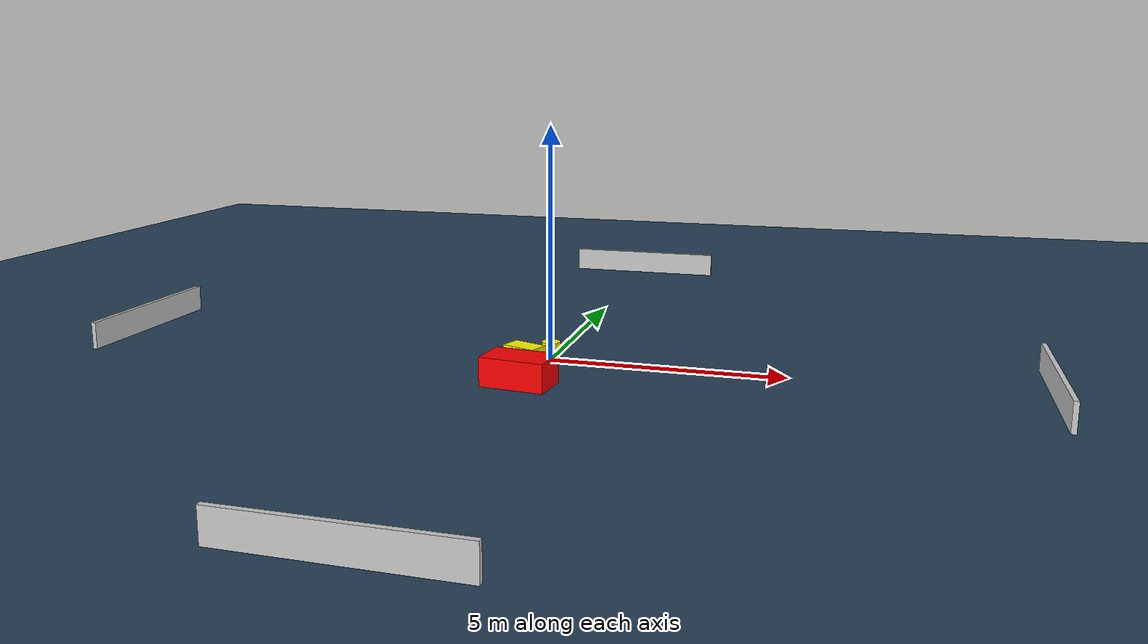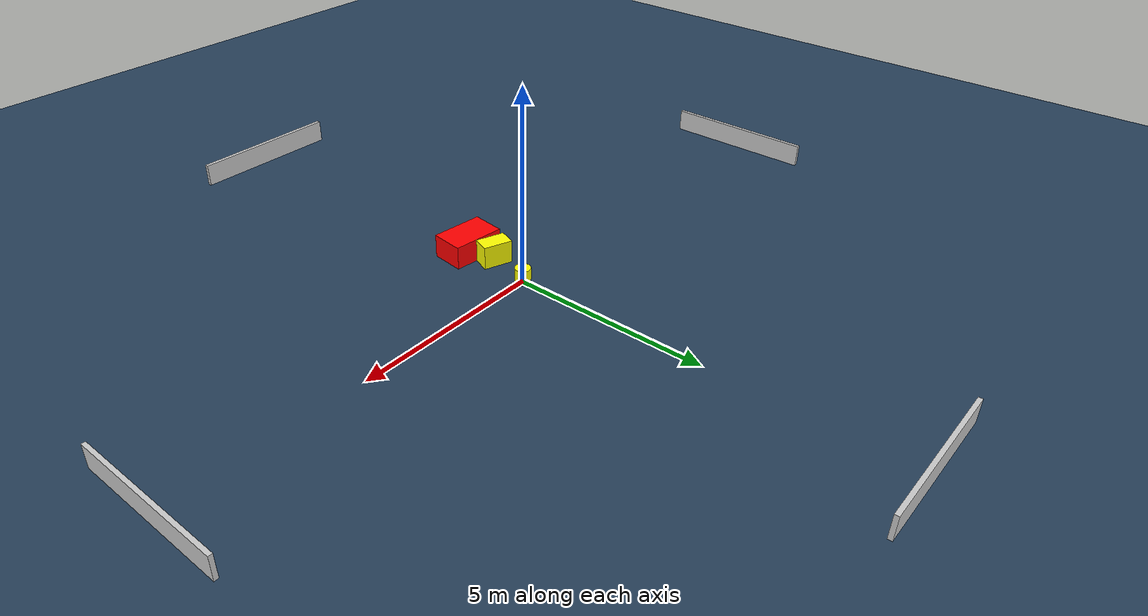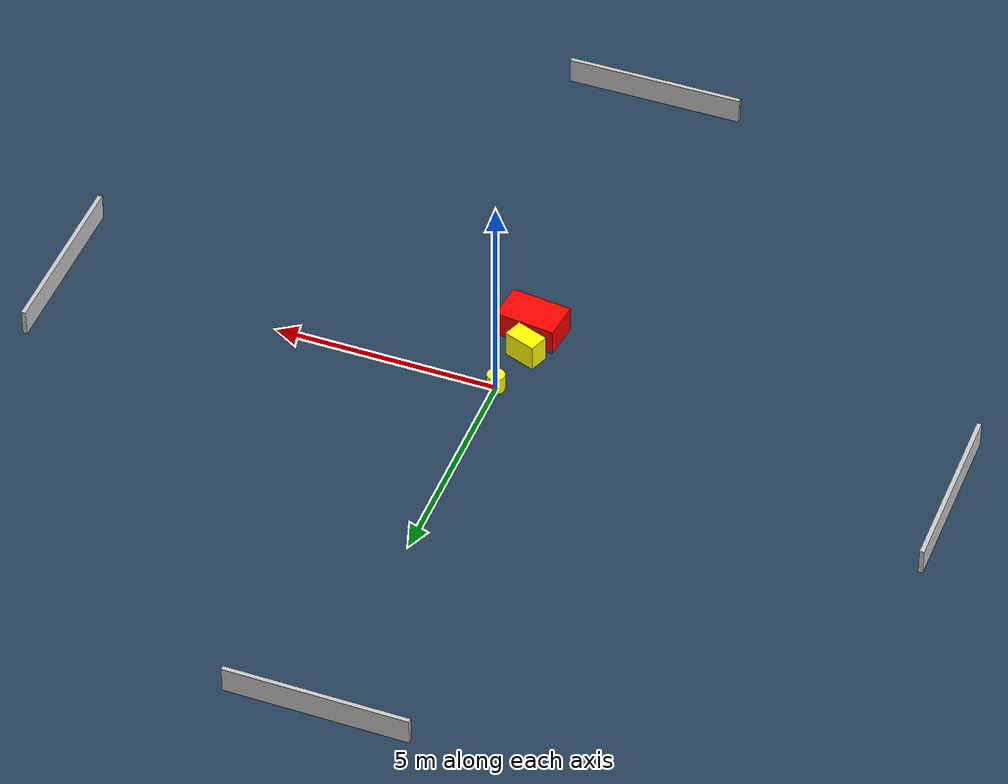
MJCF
<?xml version="1.0" ?>
<mujoco model="generated_environment">
  <option timestep="0.01" integrator="RK4" cone="elliptic"/>
  <default>
    <geom density="1"/>
  </default>
  <asset>
    <texture builtin="gradient" height="3072" name="skybox" rgb1="0.3 0.5 0.7" rgb2="0 0 0" type="skybox" width="512"/>
    <texture builtin="checker" height="300" name="groundplane" rgb1="0.2 0.3 0.4" rgb2="0.1 0.2 0.3" type="2d" width="300"/>
    <material name="groundplane" reflectance="0.2" texrepeat="5 5" texture="groundplane"/>
  </asset>
  <worldbody>
    <light dir="0 0 -1" directional="true" pos="0 0 1.5"/>
    <geom condim="3" friction="0.5 0.005 0.001" material="groundplane" name="floor" pos="0 0 0" size="0 0 0.05" type="plane"/>
    <body name="walls">
      <geom name="wall_1" condim="4" pos="-10.0 0.0 0.3" rgba="0.800000011920929 0.800000011920929 0.800000011920929 1.0" size="0.05 2.0 0.3" type="box"/>
      <geom name="wall_2" condim="4" pos="10.0 0.0 0.3" rgba="0.800000011920929 0.800000011920929 0.800000011920929 1.0" size="0.05 2.0 0.3" type="box"/>
      <geom name="wall_3" condim="4" pos="0.0 -10.0 0.3" rgba="0.800000011920929 0.800000011920929 0.800000011920929 1.0" size="2.0 0.05 0.3" type="box"/>
      <geom name="wall_4" condim="4" pos="0.0 10.0 0.3" rgba="0.800000011920929 0.800000011920929 0.800000011920929 1.0" size="2.0 0.05 0.3" type="box"/>
    </body>
    <body name="robot">
      <joint name="joint_x" type="slide" pos="0 0 0" axis="1 0 0"/>
      <joint name="joint_y" type="slide" pos="0 0 0" axis="0 1 0"/>
      <geom name="robot" type="cylinder" pos="0.0 0.0 0.2" size="0.2 0.2 0.0" mass="5.0" friction="1.0 0.005 0.0001" condim="4" rgba="1.0 1.0 0.0 1.0"/>
    </body>
    <body name="obstacle_1_movable">
      <geom name="obstacle_1_movable" condim="4" pos="-0.2409481203475948 -1.1390351362592945 0.3" euler="0 0 249.72606840837983" friction="0.0 0.005 0.001" rgba="1.0 1.0 0.0 1.0" size="0.22474523599407414 0.3736157381885369 0.3" type="box" mass="0.1"/>
      <joint type="free"/>
    </body>
    <body name="obstacle_2_static">
      <geom name="obstacle_2_static" condim="4" pos="-0.11504115789409863 -1.9084720423458588 0.3" euler="0 0 83.83325407590308" friction="0.0 0.005 0.001" rgba="1.0 0.0 0.0 1.0" size="0.42704706675548165 0.682378492295631 0.3" type="box"/>
    </body>
  </worldbody>
  <actuator>
    <motor name="actuator_x" joint="joint_x" gear="1" ctrlrange="-1 1"/>
    <motor name="actuator_y" joint="joint_y" gear="1" ctrlrange="-1 1"/>
  </actuator>
</mujoco>
